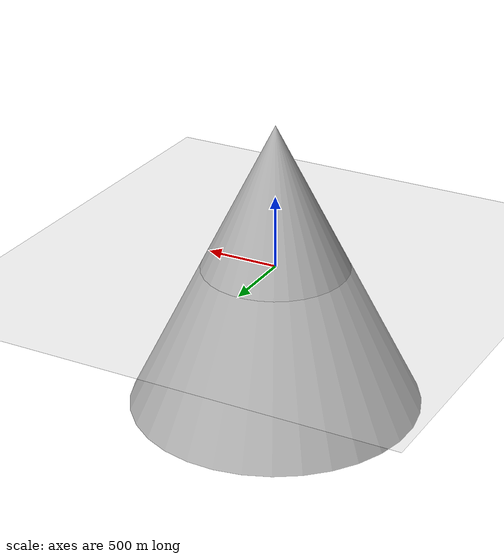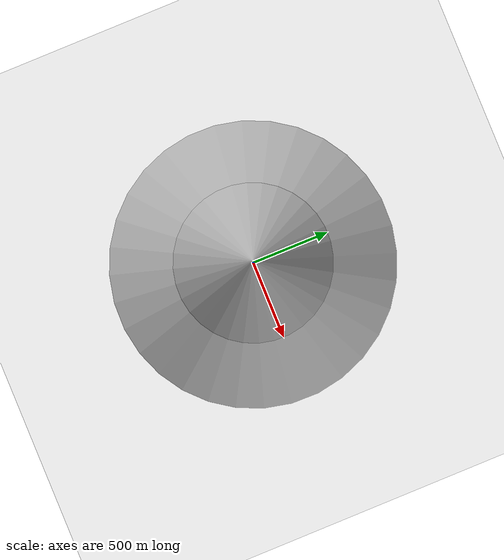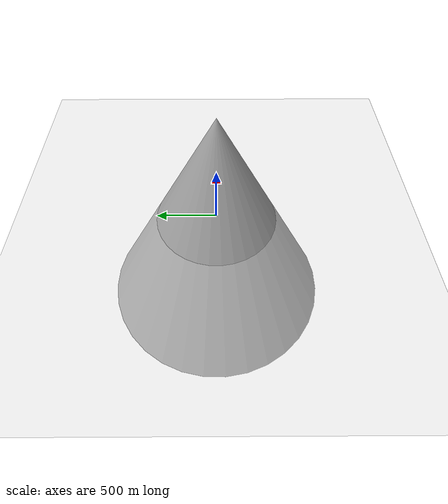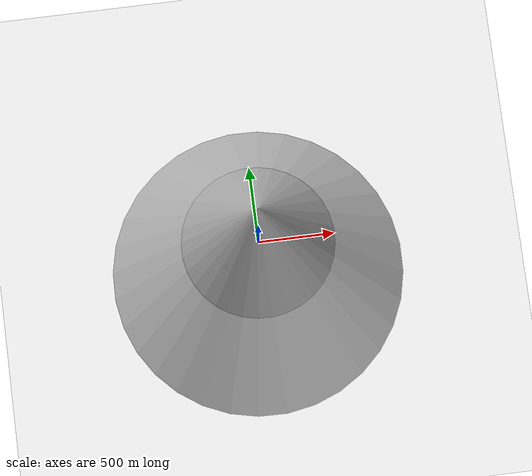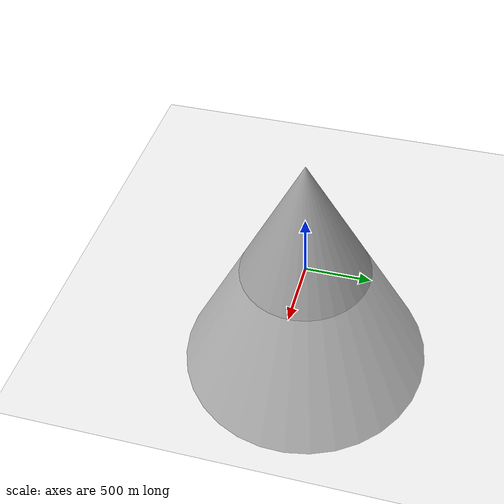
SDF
<sdf version="1.7">
 <world name="default">
  <light name="sun" type="directional">
   <pose>0 0 10 0 -0 0</pose>
   <diffuse>0.8 0.8 0.8 1</diffuse>
   <specular>0.2 0.2 0.2 1</specular>
   <attenuation>
    <range>1000</range>
    <constant>0.9</constant>
    <linear>0.01</linear>
    <quadratic>0.001</quadratic>
   </attenuation>
   <direction>-0.5 0.1 -0.9</direction>
   <spot><inner_angle>0</inner_angle><outer_angle>0</outer_angle><falloff>0</falloff></spot>
  </light>
  <model name="ground_plane">
   <static>1</static>
   <link name="link">
    <collision name="collision">
     <geometry><plane><normal>0 0 1</normal><size>100 100</size></plane></geometry>
     <surface>
      <contact><collide_bitmask>65535</collide_bitmask></contact>
      <friction><ode><mu>100</mu><mu2>50</mu2></ode></friction>
     </surface>
    </collision>
    <visual name="visual">
     <cast_shadows>0</cast_shadows>
     <geometry><plane><normal>0 0 1</normal><size>100 100</size></plane></geometry>
     <material>
      <script><uri>file://media/materials/scripts/gazebo.material</uri><name>Gazebo/Grey</name></script>
     </material>
    </visual>
   </link>
  </model>
  <gravity>0 0 -9.8</gravity>
  <magnetic_field>6e-06 2.3e-05 -4.2e-05</magnetic_field>
  <atmosphere type="adiabatic"/>
  <physics type="ode">
   <max_step_size>0.001</max_step_size>
   <real_time_factor>1</real_time_factor>
   <real_time_update_rate>1000</real_time_update_rate>
  </physics>
  <scene><ambient>0.4 0.4 0.4 1</ambient><background>0.7 0.7 0.7 1</background><shadows>1</shadows></scene>
  <spherical_coordinates>
   <surface_model>EARTH_WGS84</surface_model>
   <latitude_deg>0</latitude_deg>
   <longitude_deg>0</longitude_deg>
   <elevation>0</elevation>
   <heading_deg>0</heading_deg>
  </spherical_coordinates>
  <model name="escada">
   <link name="link">
    <collision name="collision">
     <geometry><mesh><scale>1.2 1.2 1.2</scale><uri>model://escada/meshes/escada.stl</uri></mesh></geometry>
    </collision>
    <visual name="visual">
     <geometry><mesh><scale>1.2 1.2 1.2</scale><uri>model://escada/meshes/escada.dae</uri></mesh></geometry>
    </visual>
    <inertial>
     <inertia><ixx>1</ixx><ixy>0</ixy><ixz>0</ixz><iyy>1</iyy><iyz>0</iyz><izz>1</izz></inertia>
     <mass>1</mass>
    </inertial>
   </link>
   <pose>2.33729 -7.95069 -1e-06 0 1e-06 3.12031</pose>
  </model>
  <model name="lombada">
   <link name="link">
    <collision name="collision">
     <geometry><mesh><scale>1 1 1</scale><uri>model://lombada/meshes/lombada.stl</uri></mesh></geometry>
    </collision>
    <visual name="visual">
     <geometry><mesh><scale>1 1 1</scale><uri>model://lombada/meshes/lombada.dae</uri></mesh></geometry>
    </visual>
    <inertial>
     <inertia><ixx>1</ixx><ixy>0</ixy><ixz>0</ixz><iyy>1</iyy><iyz>0</iyz><izz>1</izz></inertia>
     <mass>1</mass>
    </inertial>
   </link>
   <pose>2.72012 -5.39785 -7e-06 4e-06 0 -1.6038</pose>
  </model>
  <model name="lombada_clone">
   <link name="link">
    <collision name="collision">
     <geometry><mesh><scale>1 1 1</scale><uri>model://lombada/meshes/lombada.stl</uri></mesh></geometry>
    </collision>
    <visual name="visual">
     <geometry><mesh><scale>1 1 1</scale><uri>model://lombada/meshes/lombada.dae</uri></mesh></geometry>
    </visual>
    <inertial>
     <inertia><ixx>1</ixx><ixy>0</ixy><ixz>0</ixz><iyy>1</iyy><iyz>0</iyz><izz>1</izz></inertia>
     <mass>1</mass>
    </inertial>
   </link>
   <pose>2.82475 -4.49108 -7e-06 -4e-06 -0 -1.60956</pose>
  </model>
  <model name="lombada_clone_0">
   <link name="link">
    <collision name="collision">
     <geometry><mesh><scale>1 1 1</scale><uri>model://lombada/meshes/lombada.stl</uri></mesh></geometry>
    </collision>
    <visual name="visual">
     <geometry><mesh><scale>1 1 1</scale><uri>model://lombada/meshes/lombada.dae</uri></mesh></geometry>
    </visual>
    <inertial>
     <inertia><ixx>1</ixx><ixy>0</ixy><ixz>0</ixz><iyy>1</iyy><iyz>0</iyz><izz>1</izz></inertia>
     <mass>1</mass>
    </inertial>
   </link>
   <pose>2.91101 -3.62542 -7e-06 4e-06 -0 -1.58419</pose>
  </model>
  <model name="ico_esfera">
   <link name="link">
    <collision name="collision">
     <geometry><mesh><scale>1 1 1</scale><uri>model://ico_esfera/meshes/ico_esfera.stl</uri></mesh></geometry>
    </collision>
    <visual name="visual">
     <geometry><mesh><scale>1 1 1</scale><uri>model://ico_esfera/meshes/ico_esfera.dae</uri></mesh></geometry>
    </visual>
    <inertial>
     <inertia><ixx>1</ixx><ixy>0</ixy><ixz>0</ixz><iyy>1</iyy><iyz>0</iyz><izz>1</izz></inertia>
     <mass>1</mass>
    </inertial>
   </link>
   <pose>-1.53177 -7.80784 -8e-06 1e-06 -0 0</pose>
  </model>
  <model name="meia_esfera">
   <link name="link">
    <collision name="collision">
     <geometry><mesh><scale>1 1 1</scale><uri>model://meia_esfera/meshes/meia_esfera.stl</uri></mesh></geometry>
    </collision>
    <visual name="visual">
     <geometry><mesh><scale>1 1 1</scale><uri>model://meia_esfera/meshes/meia_esfera.dae</uri></mesh></geometry>
    </visual>
    <inertial>
     <inertia><ixx>1</ixx><ixy>0</ixy><ixz>0</ixz><iyy>1</iyy><iyz>0</iyz><izz>1</izz></inertia>
     <mass>1</mass>
    </inertial>
   </link>
   <pose>-1.5385 -5.17671 -1e-06 0 -1e-06 0</pose>
  </model>
  <model name="rampa">
   <link name="link">
    <collision name="collision">
     <geometry><mesh><scale>1 1 1</scale><uri>model://rampa/meshes/rampa.stl</uri></mesh></geometry>
    </collision>
    <visual name="visual">
     <geometry><mesh><scale>1 1 1</scale><uri>model://rampa/meshes/rampa.dae</uri></mesh></geometry>
    </visual>
    <inertial>
     <inertia><ixx>1</ixx><ixy>0</ixy><ixz>0</ixz><iyy>1</iyy><iyz>0</iyz><izz>1</izz></inertia>
     <mass>1</mass>
    </inertial>
   </link>
   <pose>6.61879 -7.0754 0.5 0 0 -1.5502</pose>
  </model>
  <model name="anel">
   <link name="link">
    <collision name="collision">
     <geometry><mesh><scale>1 1 1</scale><uri>model://anel/meshes/anel.stl</uri></mesh></geometry>
    </collision>
    <visual name="visual">
     <geometry><mesh><scale>1 1 1</scale><uri>model://anel/meshes/anel.dae</uri></mesh></geometry>
    </visual>
    <inertial>
     <inertia><ixx>1</ixx><ixy>0</ixy><ixz>0</ixz><iyy>1</iyy><iyz>0</iyz><izz>1</izz></inertia>
     <mass>1</mass>
    </inertial>
   </link>
   <pose>-1.74196 -2.3674 0.249999 -1e-06 -1e-06 -0.076665</pose>
  </model>
  <model name="cone">
   <link name="link">
    <collision name="collision">
     <geometry><mesh><scale>1000 1000 1000</scale><uri>model://cone/meshes/cone.stl</uri></mesh></geometry>
    </collision>
    <visual name="visual">
     <geometry><mesh><scale>1000 1000 1000</scale><uri>model://cone/meshes/cone.dae</uri></mesh></geometry>
    </visual>
    <inertial>
     <inertia><ixx>1</ixx><ixy>0</ixy><ixz>0</ixz><iyy>1</iyy><iyz>0</iyz><izz>1</izz></inertia>
     <mass>1</mass>
    </inertial>
   </link>
   <pose>-1.61436 0.390532 0.999997 3e-06 -0 0.276079</pose>
  </model>
  <model name="rocha">
   <link name="link">
    <collision name="collision">
     <geometry><mesh><scale>1 1 1</scale><uri>model://rocha/meshes/rocha.stl</uri></mesh></geometry>
    </collision>
    <visual name="visual">
     <geometry><mesh><scale>1 1 1</scale><uri>model://rocha/meshes/rocha.dae</uri></mesh></geometry>
    </visual>
    <inertial>
     <inertia><ixx>1</ixx><ixy>0</ixy><ixz>0</ixz><iyy>1</iyy><iyz>0</iyz><izz>1</izz></inertia>
     <mass>1</mass>
    </inertial>
   </link>
   <pose>7.25818 -2.04448 0.572543 2.03926 -1.28845 -0.63555</pose>
  </model>
  <model name="unit_box_clone">
   <pose>-2.5765 5.67637 2.75414 6e-06 -0 -0.001815</pose>
   <link name="link">
    <inertial>
     <mass>1</mass>
     <inertia>
      <ixx>0.166667</ixx>
      <ixy>0</ixy>
      <ixz>0</ixz>
      <iyy>0.166667</iyy>
      <iyz>0</iyz>
      <izz>0.166667</izz>
     </inertia>
    </inertial>
    <collision name="collision"><geometry><box><size>5.18254 0.67631 5.50829</size></box></geometry></collision>
    <visual name="visual">
     <geometry><box><size>5.18254 0.67631 5.50829</size></box></geometry>
     <material>
      <script><name>Gazebo/Grey</name><uri>file://media/materials/scripts/gazebo.material</uri></script>
     </material>
    </visual>
   </link>
  </model>
  <model name="unit_box_clone_clone">
   <pose>-2.61181 7.36425 2.75415 7e-06 1e-06 -0.001815</pose>
   <link name="link">
    <inertial>
     <mass>1</mass>
     <inertia>
      <ixx>0.166667</ixx>
      <ixy>0</ixy>
      <ixz>0</ixz>
      <iyy>0.166667</iyy>
      <iyz>0</iyz>
      <izz>0.166667</izz>
     </inertia>
    </inertial>
    <collision name="collision"><geometry><box><size>5.18254 0.67631 5.50829</size></box></geometry></collision>
    <visual name="visual">
     <geometry><box><size>5.18254 0.67631 5.50829</size></box></geometry>
     <material>
      <script><name>Gazebo/Grey</name><uri>file://media/materials/scripts/gazebo.material</uri></script>
     </material>
    </visual>
   </link>
  </model>
  <model name="esfera_personalizada_2">
   <link name="link">
    <collision name="collision">
     <geometry>
      <mesh><scale>1 1 1</scale><uri>model://esfera_personalizada_2/meshes/esfera_personalizada_2.stl</uri></mesh>
     </geometry>
    </collision>
    <visual name="visual">
     <geometry>
      <mesh><scale>1 1 1</scale><uri>model://esfera_personalizada_2/meshes/esfera_personalizada_2.dae</uri></mesh>
     </geometry>
    </visual>
    <inertial>
     <inertia><ixx>1</ixx><ixy>0</ixy><ixz>0</ixz><iyy>1</iyy><iyz>0</iyz><izz>1</izz></inertia>
     <mass>1</mass>
    </inertial>
   </link>
   <pose>-3.84637 -7.95495 0.019542 -4e-06 -3e-06 -0</pose>
  </model>
  <model name="unit_box_clone_clone_0">
   <pose>-2.64517 4.03206 2.75415 -9e-06 1e-06 -0.001816</pose>
   <link name="link">
    <inertial>
     <mass>1</mass>
     <inertia>
      <ixx>0.166667</ixx>
      <ixy>0</ixy>
      <ixz>0</ixz>
      <iyy>0.166667</iyy>
      <iyz>0</iyz>
      <izz>0.166667</izz>
     </inertia>
    </inertial>
    <collision name="collision"><geometry><box><size>5.18254 0.67631 5.50829</size></box></geometry></collision>
    <visual name="visual">
     <geometry><box><size>5.18254 0.67631 5.50829</size></box></geometry>
     <material>
      <script><name>Gazebo/Grey</name><uri>file://media/materials/scripts/gazebo.material</uri></script>
     </material>
    </visual>
   </link>
  </model>
  <model name="chao_aspero">
   <link name="link">
    <collision name="collision">
     <geometry><mesh><scale>1 1 1</scale><uri>model://chao_aspero/meshes/chao_aspero.stl</uri></mesh></geometry>
    </collision>
    <visual name="visual">
     <geometry><mesh><scale>1 1 1</scale><uri>model://chao_aspero/meshes/chao_aspero.dae</uri></mesh></geometry>
    </visual>
    <inertial>
     <inertia><ixx>1</ixx><ixy>0</ixy><ixz>0</ixz><iyy>1</iyy><iyz>0</iyz><izz>1</izz></inertia>
     <mass>1</mass>
    </inertial>
   </link>
   <pose>2.97576 -1.571 -9e-06 2e-06 -0 0</pose>
  </model>
  <model name="unit_box">
   <pose>5.07697 3.06169 0.49999 0 -1.1e-05 0.00143</pose>
   <link name="link">
    <inertial>
     <mass>1</mass>
     <inertia>
      <ixx>0.166667</ixx>
      <ixy>0</ixy>
      <ixz>0</ixz>
      <iyy>0.166667</iyy>
      <iyz>0</iyz>
      <izz>0.166667</izz>
     </inertia>
    </inertial>
    <collision name="collision"><geometry><box><size>0.999994 1 1</size></box></geometry></collision>
    <visual name="visual">
     <geometry><box><size>0.999994 1 1</size></box></geometry>
     <material>
      <script><name>Gazebo/Grey</name><uri>file://media/materials/scripts/gazebo.material</uri></script>
     </material>
    </visual>
   </link>
  </model>
  <model name="unit_box_clone_0">
   <pose>5.07167 3.59811 0.388497 -0 -1.9e-05 0.001417</pose>
   <link name="link">
    <inertial>
     <mass>1</mass>
     <inertia>
      <ixx>0.166667</ixx>
      <ixy>0</ixy>
      <ixz>0</ixz>
      <iyy>0.166667</iyy>
      <iyz>0</iyz>
      <izz>0.166667</izz>
     </inertia>
    </inertial>
    <collision name="collision"><geometry><box><size>1.91329 0.536401 0.999996</size></box></geometry></collision>
    <visual name="visual">
     <geometry><box><size>1.91329 0.536401 0.999996</size></box></geometry>
     <material>
      <script><name>Gazebo/Grey</name><uri>file://media/materials/scripts/gazebo.material</uri></script>
     </material>
    </visual>
   </link>
  </model>
  <model name="unit_box_clone_0_clone">
   <pose>5.02492 4.13453 0.281754 8e-06 -0 0.001439</pose>
   <link name="link">
    <inertial>
     <mass>1</mass>
     <inertia>
      <ixx>0.166667</ixx>
      <ixy>0</ixy>
      <ixz>0</ixz>
      <iyy>0.166667</iyy>
      <iyz>0</iyz>
      <izz>0.166667</izz>
     </inertia>
    </inertial>
    <collision name="collision"><geometry><box><size>1.91329 0.536401 0.777031</size></box></geometry></collision>
    <visual name="visual">
     <geometry><box><size>1.91329 0.536401 0.777031</size></box></geometry>
     <material>
      <script><name>Gazebo/Grey</name><uri>file://media/materials/scripts/gazebo.material</uri></script>
     </material>
    </visual>
   </link>
  </model>
  <model name="unit_box_clone_0_clone_clone">
   <pose>5.02118 4.67176 0.165724 6e-06 -0 0.001437</pose>
   <link name="link">
    <inertial>
     <mass>1</mass>
     <inertia>
      <ixx>0.166667</ixx>
      <ixy>0</ixy>
      <ixz>0</ixz>
      <iyy>0.166667</iyy>
      <iyz>0</iyz>
      <izz>0.166667</izz>
     </inertia>
    </inertial>
    <collision name="collision"><geometry><box><size>1.91329 0.536401 0.563512</size></box></geometry></collision>
    <visual name="visual">
     <geometry><box><size>1.91329 0.536401 0.563512</size></box></geometry>
     <material>
      <script><name>Gazebo/Grey</name><uri>file://media/materials/scripts/gazebo.material</uri></script>
     </material>
    </visual>
   </link>
  </model>
 </world>
</sdf>
